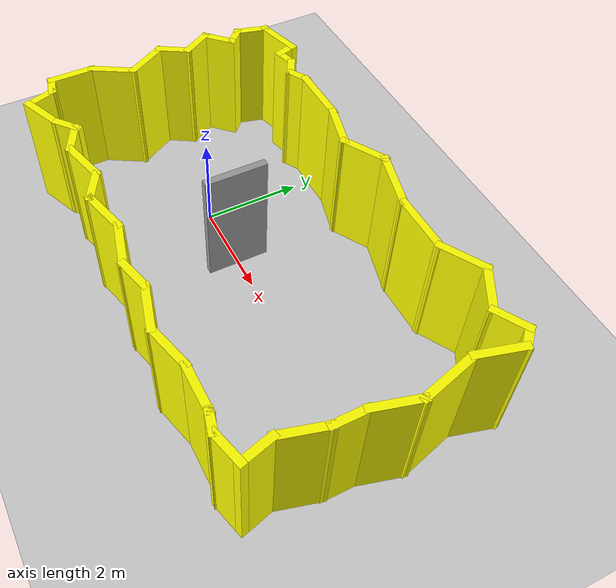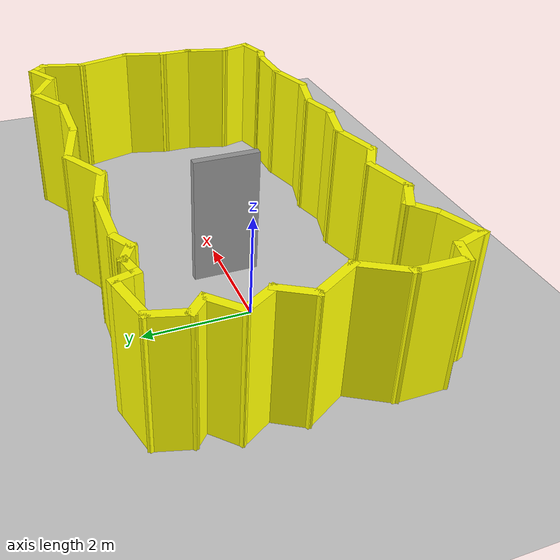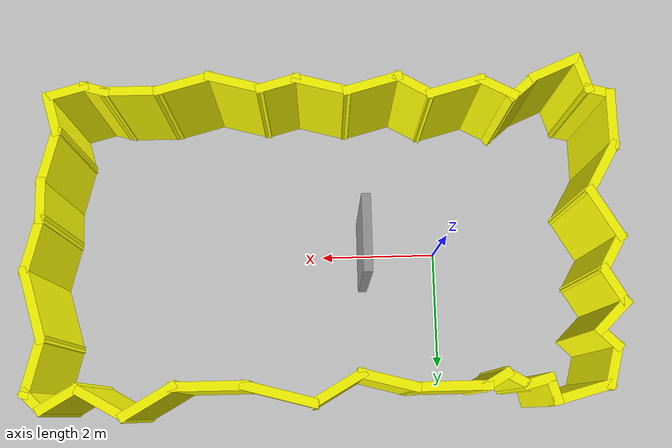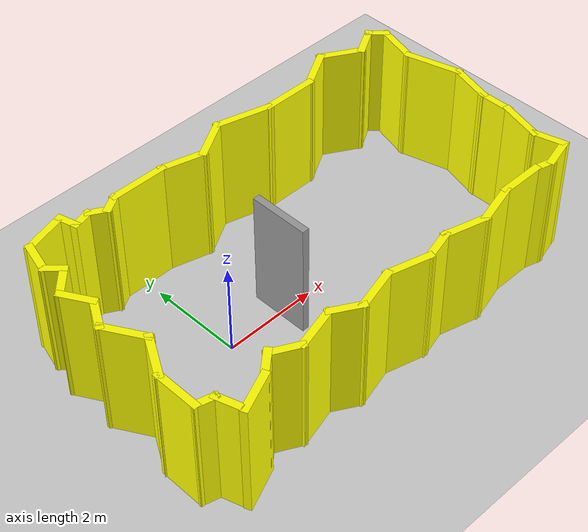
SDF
<sdf version="1.6">
 <world name="default">
  <light name="sun" type="directional">
   <pose>0 0 10 0 -0 0</pose>
   <diffuse>0.8 0.8 0.8 1</diffuse>
   <specular>0.2 0.2 0.2 1</specular>
   <attenuation>
    <range>1000</range>
    <constant>0.9</constant>
    <linear>0.01</linear>
    <quadratic>0.001</quadratic>
   </attenuation>
   <direction>-0.5 0.1 -0.9</direction>
  </light>
  <model name="ground_plane">
   <static>1</static>
   <link name="link">
    <collision name="collision">
     <geometry><plane><normal>0 0 1</normal><size>100 100</size></plane></geometry>
     <surface>
      <contact><collide_bitmask>65535</collide_bitmask></contact>
      <friction><ode><mu>100</mu><mu2>50</mu2></ode></friction>
     </surface>
    </collision>
    <visual name="visual">
     <cast_shadows>0</cast_shadows>
     <geometry><plane><normal>0 0 1</normal><size>100 100</size></plane></geometry>
     <material>
      <script><uri>file://media/materials/scripts/gazebo.material</uri><name>Gazebo/Grey</name></script>
     </material>
    </visual>
   </link>
  </model>
  <gravity>0 0 -9.8</gravity>
  <magnetic_field>6e-06 2.3e-05 -4.2e-05</magnetic_field>
  <atmosphere type="adiabatic"/>
  <physics name="default_physics" default="0" type="ode">
   <max_step_size>0.001</max_step_size>
   <real_time_factor>1</real_time_factor>
   <real_time_update_rate>1000</real_time_update_rate>
  </physics>
  <scene><ambient>0.4 0.4 0.4 1</ambient><background>0.7 0.7 0.7 1</background><shadows>1</shadows></scene>
  <audio><device>default</device></audio>
  <spherical_coordinates>
   <surface_model>EARTH_WGS84</surface_model>
   <latitude_deg>0</latitude_deg>
   <longitude_deg>0</longitude_deg>
   <elevation>0</elevation>
   <heading_deg>0</heading_deg>
  </spherical_coordinates>
  <model name="maze4">
   <pose>1.98225 -0.00866 0 0 -0 0</pose>
   <link name="Wall_10">
    <collision name="Wall_10_Collision">
     <geometry><box><size>1 0.15 2.5</size></box></geometry>
     <pose>0 0 1.25 0 -0 0</pose>
    </collision>
    <visual name="Wall_10_Visual">
     <pose>0 0 1.25 0 -0 0</pose>
     <geometry><box><size>1 0.15 2.5</size></box></geometry>
     <material>
      <script><uri>file://media/materials/scripts/gazebo.material</uri><name>Gazebo/Grey</name></script>
      <ambient>1 1 0 1</ambient>
     </material>
     <meta><layer>0</layer></meta>
    </visual>
    <pose>3.03563 -2.37458 0 0 -0 0</pose>
   </link>
   <link name="Wall_11">
    <collision name="Wall_11_Collision">
     <geometry><box><size>0.5 0.15 2.5</size></box></geometry>
     <pose>0 0 1.25 0 -0 0</pose>
    </collision>
    <visual name="Wall_11_Visual">
     <pose>0 0 1.25 0 -0 0</pose>
     <geometry><box><size>0.5 0.15 2.5</size></box></geometry>
     <material>
      <script><uri>file://media/materials/scripts/gazebo.material</uri><name>Gazebo/Grey</name></script>
      <ambient>1 1 0 1</ambient>
     </material>
     <meta><layer>0</layer></meta>
    </visual>
    <pose>3.62967 -2.41987 0 0 -0 -0.261799</pose>
   </link>
   <link name="Wall_12">
    <collision name="Wall_12_Collision">
     <geometry><box><size>0.75 0.15 2.5</size></box></geometry>
     <pose>0 0 1.25 0 -0 0</pose>
    </collision>
    <visual name="Wall_12_Visual">
     <pose>0 0 1.25 0 -0 0</pose>
     <geometry><box><size>0.75 0.15 2.5</size></box></geometry>
     <material>
      <script><uri>file://media/materials/scripts/gazebo.material</uri><name>Gazebo/Grey</name></script>
      <ambient>1 1 0 1</ambient>
     </material>
     <meta><layer>0</layer></meta>
    </visual>
    <pose>4.08848 -2.38752 0 0 -0 0.261799</pose>
   </link>
   <link name="Wall_13">
    <collision name="Wall_13_Collision">
     <geometry><box><size>0.75 0.15 2.5</size></box></geometry>
     <pose>0 0 1.25 0 -0 0</pose>
    </collision>
    <visual name="Wall_13_Visual">
     <pose>0 0 1.25 0 -0 0</pose>
     <geometry><box><size>0.75 0.15 2.5</size></box></geometry>
     <material>
      <script><uri>file://media/materials/scripts/gazebo.material</uri><name>Gazebo/Grey</name></script>
      <ambient>1 1 0 1</ambient>
     </material>
     <meta><layer>0</layer></meta>
    </visual>
    <pose>4.30061 -2.0201 0 0 -0 1.8326</pose>
   </link>
   <link name="Wall_14">
    <collision name="Wall_14_Collision">
     <geometry><box><size>1 0.15 2.5</size></box></geometry>
     <pose>0 0 1.25 0 -0 0</pose>
    </collision>
    <visual name="Wall_14_Visual">
     <pose>0 0 1.25 0 -0 0</pose>
     <geometry><box><size>1 0.15 2.5</size></box></geometry>
     <material>
      <script><uri>file://media/materials/scripts/gazebo.material</uri><name>Gazebo/Grey</name></script>
      <ambient>1 1 0 1</ambient>
     </material>
     <meta><layer>0</layer></meta>
    </visual>
    <pose>4.33297 -1.3198 0 0 -0 1.309</pose>
   </link>
   <link name="Wall_15">
    <collision name="Wall_15_Collision">
     <geometry><box><size>0.75 0.15 2.5</size></box></geometry>
     <pose>0 0 1.25 0 -0 0</pose>
    </collision>
    <visual name="Wall_15_Visual">
     <pose>0 0 1.25 0 -0 0</pose>
     <geometry><box><size>0.75 0.15 2.5</size></box></geometry>
     <material>
      <script><uri>file://media/materials/scripts/gazebo.material</uri><name>Gazebo/Grey</name></script>
      <ambient>1 1 0 1</ambient>
     </material>
     <meta><layer>0</layer></meta>
    </visual>
    <pose>4.44297 -0.609282 0 0 -0 1.5708</pose>
   </link>
   <link name="Wall_16">
    <collision name="Wall_16_Collision">
     <geometry><box><size>1 0.15 2.5</size></box></geometry>
     <pose>0 0 1.25 0 -0 0</pose>
    </collision>
    <visual name="Wall_16_Visual">
     <pose>0 0 1.25 0 -0 0</pose>
     <geometry><box><size>1 0.15 2.5</size></box></geometry>
     <material>
      <script><uri>file://media/materials/scripts/gazebo.material</uri><name>Gazebo/Grey</name></script>
      <ambient>1 1 0 1</ambient>
     </material>
     <meta><layer>0</layer></meta>
    </visual>
    <pose>4.55296 0.101236 0 0 -0 1.309</pose>
   </link>
   <link name="Wall_17">
    <collision name="Wall_17_Collision">
     <geometry><box><size>1.25 0.15 2.5</size></box></geometry>
     <pose>0 0 1.25 0 -0 0</pose>
    </collision>
    <visual name="Wall_17_Visual">
     <pose>0 0 1.25 0 -0 0</pose>
     <geometry><box><size>1.25 0.15 2.5</size></box></geometry>
     <material>
      <script><uri>file://media/materials/scripts/gazebo.material</uri><name>Gazebo/Grey</name></script>
      <ambient>1 1 0 1</ambient>
     </material>
     <meta><layer>0</layer></meta>
    </visual>
    <pose>4.52061 1.04301 0 0 -0 1.8326</pose>
   </link>
   <link name="Wall_18">
    <collision name="Wall_18_Collision">
     <geometry><box><size>1 0.15 2.5</size></box></geometry>
     <pose>0 0 1.25 0 -0 0</pose>
    </collision>
    <visual name="Wall_18_Visual">
     <pose>0 0 1.25 0 -0 0</pose>
     <geometry><box><size>1 0.15 2.5</size></box></geometry>
     <material>
      <script><uri>file://media/materials/scripts/gazebo.material</uri><name>Gazebo/Grey</name></script>
      <ambient>1 1 0 1</ambient>
     </material>
     <meta><layer>0</layer></meta>
    </visual>
    <pose>4.48826 1.98479 0 0 -0 1.309</pose>
   </link>
   <link name="Wall_19">
    <collision name="Wall_19_Collision">
     <geometry><box><size>0.5 0.15 2.5</size></box></geometry>
     <pose>0 0 1.25 0 -0 0</pose>
    </collision>
    <visual name="Wall_19_Visual">
     <pose>0 0 1.25 0 -0 0</pose>
     <geometry><box><size>0.5 0.15 2.5</size></box></geometry>
     <material>
      <script><uri>file://media/materials/scripts/gazebo.material</uri><name>Gazebo/Grey</name></script>
      <ambient>1 1 0 1</ambient>
     </material>
     <meta><layer>0</layer></meta>
    </visual>
    <pose>4.47451 2.51905 0 0 -0 2.35619</pose>
   </link>
   <link name="Wall_2">
    <collision name="Wall_2_Collision">
     <geometry><box><size>0.733012 0.15 2.5</size></box></geometry>
     <pose>0 0 1.25 0 -0 0</pose>
    </collision>
    <visual name="Wall_2_Visual">
     <pose>0 0 1.25 0 -0 0</pose>
     <geometry><box><size>0.733012 0.15 2.5</size></box></geometry>
     <material>
      <script><uri>file://media/materials/scripts/gazebo.material</uri><name>Gazebo/Grey</name></script>
      <ambient>1 1 0 1</ambient>
     </material>
     <meta><layer>0</layer></meta>
    </visual>
    <pose>-2.85174 -2.31421 0 0 -0 -0.484046</pose>
   </link>
   <link name="Wall_20">
    <collision name="Wall_20_Collision">
     <geometry><box><size>0.75 0.15 2.5</size></box></geometry>
     <pose>0 0 1.25 0 -0 0</pose>
    </collision>
    <visual name="Wall_20_Visual">
     <pose>0 0 1.25 0 -0 0</pose>
     <geometry><box><size>0.75 0.15 2.5</size></box></geometry>
     <material>
      <script><uri>file://media/materials/scripts/gazebo.material</uri><name>Gazebo/Grey</name></script>
      <ambient>1 1 0 1</ambient>
     </material>
     <meta><layer>0</layer></meta>
    </visual>
    <pose>4.09096 2.4928 0 0 -0 -2.61799</pose>
   </link>
   <link name="Wall_21">
    <collision name="Wall_21_Collision">
     <geometry><box><size>1 0.15 2.5</size></box></geometry>
     <pose>0 0 1.25 0 -0 0</pose>
    </collision>
    <visual name="Wall_21_Visual">
     <pose>0 0 1.25 0 -0 0</pose>
     <geometry><box><size>1 0.15 2.5</size></box></geometry>
     <material>
      <script><uri>file://media/materials/scripts/gazebo.material</uri><name>Gazebo/Grey</name></script>
      <ambient>1 1 0 1</ambient>
     </material>
     <meta><layer>0</layer></meta>
    </visual>
    <pose>3.46309 2.5553 0 0 -0 2.61799</pose>
   </link>
   <link name="Wall_22">
    <collision name="Wall_22_Collision">
     <geometry><box><size>1 0.15 2.5</size></box></geometry>
     <pose>0 0 1.25 0 -0 0</pose>
    </collision>
    <visual name="Wall_22_Visual">
     <pose>0 0 1.25 0 -0 0</pose>
     <geometry><box><size>1 0.15 2.5</size></box></geometry>
     <material>
      <script><uri>file://media/materials/scripts/gazebo.material</uri><name>Gazebo/Grey</name></script>
      <ambient>1 1 0 1</ambient>
     </material>
     <meta><layer>0</layer></meta>
    </visual>
    <pose>2.72697 2.5553 0 0 -0 -2.61799</pose>
   </link>
   <link name="Wall_23">
    <collision name="Wall_23_Collision">
     <geometry><box><size>1.25 0.15 2.5</size></box></geometry>
     <pose>0 0 1.25 0 -0 0</pose>
    </collision>
    <visual name="Wall_23_Visual">
     <pose>0 0 1.25 0 -0 0</pose>
     <geometry><box><size>1.25 0.15 2.5</size></box></geometry>
     <material>
      <script><uri>file://media/materials/scripts/gazebo.material</uri><name>Gazebo/Grey</name></script>
      <ambient>1 1 0 1</ambient>
     </material>
     <meta><layer>0</layer></meta>
    </visual>
    <pose>1.80891 2.3428 0 0 -0 3.14159</pose>
   </link>
   <link name="Wall_24">
    <collision name="Wall_24_Collision">
     <geometry><box><size>1.25 0.15 2.5</size></box></geometry>
     <pose>0 0 1.25 0 -0 0</pose>
    </collision>
    <visual name="Wall_24_Visual">
     <pose>0 0 1.25 0 -0 0</pose>
     <geometry><box><size>1.25 0.15 2.5</size></box></geometry>
     <material>
      <script><uri>file://media/materials/scripts/gazebo.material</uri><name>Gazebo/Grey</name></script>
      <ambient>1 1 0 1</ambient>
     </material>
     <meta><layer>0</layer></meta>
    </visual>
    <pose>0.727651 2.48515 0 0 -0 2.87979</pose>
   </link>
   <link name="Wall_25">
    <collision name="Wall_25_Collision">
     <geometry><box><size>1 0.15 2.5</size></box></geometry>
     <pose>0 0 1.25 0 -0 0</pose>
    </collision>
    <visual name="Wall_25_Visual">
     <pose>0 0 1.25 0 -0 0</pose>
     <geometry><box><size>1 0.15 2.5</size></box></geometry>
     <material>
      <script><uri>file://media/materials/scripts/gazebo.material</uri><name>Gazebo/Grey</name></script>
      <ambient>1 1 0 1</ambient>
     </material>
     <meta><layer>0</layer></meta>
    </visual>
    <pose>-0.171669 2.415 0 0 -0 -2.61799</pose>
   </link>
   <link name="Wall_26">
    <collision name="Wall_26_Collision">
     <geometry><box><size>1 0.15 2.5</size></box></geometry>
     <pose>0 0 1.25 0 -0 0</pose>
    </collision>
    <visual name="Wall_26_Visual">
     <pose>0 0 1.25 0 -0 0</pose>
     <geometry><box><size>1 0.15 2.5</size></box></geometry>
     <material>
      <script><uri>file://media/materials/scripts/gazebo.material</uri><name>Gazebo/Grey</name></script>
      <ambient>1 1 0 1</ambient>
     </material>
     <meta><layer>0</layer></meta>
    </visual>
    <pose>-0.950248 2.3125 0 0 -0 2.87979</pose>
   </link>
   <link name="Wall_27">
    <collision name="Wall_27_Collision">
     <geometry><box><size>1.25 0.15 2.5</size></box></geometry>
     <pose>0 0 1.25 0 -0 0</pose>
    </collision>
    <visual name="Wall_27_Visual">
     <pose>0 0 1.25 0 -0 0</pose>
     <geometry><box><size>1.25 0.15 2.5</size></box></geometry>
     <material>
      <script><uri>file://media/materials/scripts/gazebo.material</uri><name>Gazebo/Grey</name></script>
      <ambient>1 1 0 1</ambient>
     </material>
     <meta><layer>0</layer></meta>
    </visual>
    <pose>-1.91077 2.4225 0 0 -0 3.14159</pose>
   </link>
   <link name="Wall_28">
    <collision name="Wall_28_Collision">
     <geometry><box><size>0.5 0.15 2.5</size></box></geometry>
     <pose>0 0 1.25 0 -0 0</pose>
    </collision>
    <visual name="Wall_28_Visual">
     <pose>0 0 1.25 0 -0 0</pose>
     <geometry><box><size>0.5 0.15 2.5</size></box></geometry>
     <material>
      <script><uri>file://media/materials/scripts/gazebo.material</uri><name>Gazebo/Grey</name></script>
      <ambient>1 1 0 1</ambient>
     </material>
     <meta><layer>0</layer></meta>
    </visual>
    <pose>-2.61232 2.33499 0 0 -0 -2.61799</pose>
   </link>
   <link name="Wall_29">
    <collision name="Wall_29_Collision">
     <geometry><box><size>0.5 0.15 2.5</size></box></geometry>
     <pose>0 0 1.25 0 -0 0</pose>
    </collision>
    <visual name="Wall_29_Visual">
     <pose>0 0 1.25 0 -0 0</pose>
     <geometry><box><size>0.5 0.15 2.5</size></box></geometry>
     <material>
      <script><uri>file://media/materials/scripts/gazebo.material</uri><name>Gazebo/Grey</name></script>
      <ambient>1 1 0 1</ambient>
     </material>
     <meta><layer>0</layer></meta>
    </visual>
    <pose>-2.91543 2.33499 0 0 -0 2.61799</pose>
   </link>
   <link name="Wall_3">
    <collision name="Wall_3_Collision">
     <geometry><box><size>1 0.15 2.5</size></box></geometry>
     <pose>0 0 1.25 0 -0 0</pose>
    </collision>
    <visual name="Wall_3_Visual">
     <pose>0 0 1.25 0 -0 0</pose>
     <geometry><box><size>1 0.15 2.5</size></box></geometry>
     <material>
      <script><uri>file://media/materials/scripts/gazebo.material</uri><name>Gazebo/Grey</name></script>
      <ambient>1 1 0 1</ambient>
     </material>
     <meta><layer>0</layer></meta>
    </visual>
    <pose>-2.18321 -2.33987 0 0 -0 0.261799</pose>
   </link>
   <link name="Wall_30">
    <collision name="Wall_30_Collision">
     <geometry><box><size>0.5 0.15 2.5</size></box></geometry>
     <pose>0 0 1.25 0 -0 0</pose>
    </collision>
    <visual name="Wall_30_Visual">
     <pose>0 0 1.25 0 -0 0</pose>
     <geometry><box><size>0.5 0.15 2.5</size></box></geometry>
     <material>
      <script><uri>file://media/materials/scripts/gazebo.material</uri><name>Gazebo/Grey</name></script>
      <ambient>1 1 0 1</ambient>
     </material>
     <meta><layer>0</layer></meta>
    </visual>
    <pose>-3.23602 2.3772 0 0 -0 -2.87979</pose>
   </link>
   <link name="Wall_31">
    <collision name="Wall_31_Collision">
     <geometry><box><size>0.5 0.15 2.5</size></box></geometry>
     <pose>0 0 1.25 0 -0 0</pose>
    </collision>
    <visual name="Wall_31_Visual">
     <pose>0 0 1.25 0 -0 0</pose>
     <geometry><box><size>0.5 0.15 2.5</size></box></geometry>
     <material>
      <script><uri>file://media/materials/scripts/gazebo.material</uri><name>Gazebo/Grey</name></script>
      <ambient>1 1 0 1</ambient>
     </material>
     <meta><layer>0</layer></meta>
    </visual>
    <pose>-3.45035 2.50095 0 0 -0 1.8326</pose>
   </link>
   <link name="Wall_32">
    <collision name="Wall_32_Collision">
     <geometry><box><size>1 0.15 2.5</size></box></geometry>
     <pose>0 0 1.25 0 -0 0</pose>
    </collision>
    <visual name="Wall_32_Visual">
     <pose>0 0 1.25 0 -0 0</pose>
     <geometry><box><size>1 0.15 2.5</size></box></geometry>
     <material>
      <script><uri>file://media/materials/scripts/gazebo.material</uri><name>Gazebo/Grey</name></script>
      <ambient>1 1 0 1</ambient>
     </material>
     <meta><layer>0</layer></meta>
    </visual>
    <pose>-3.90616 2.55998 0 0 -0 -2.87979</pose>
   </link>
   <link name="Wall_33">
    <collision name="Wall_33_Collision">
     <geometry><box><size>0.75 0.15 2.5</size></box></geometry>
     <pose>0 0 1.25 0 -0 0</pose>
    </collision>
    <visual name="Wall_33_Visual">
     <pose>0 0 1.25 0 -0 0</pose>
     <geometry><box><size>0.75 0.15 2.5</size></box></geometry>
     <material>
      <script><uri>file://media/materials/scripts/gazebo.material</uri><name>Gazebo/Grey</name></script>
      <ambient>1 1 0 1</ambient>
     </material>
     <meta><layer>0</layer></meta>
    </visual>
    <pose>-4.39433 2.16021 0 0 -0 -1.8326</pose>
   </link>
   <link name="Wall_34">
    <collision name="Wall_34_Collision">
     <geometry><box><size>0.5 0.15 2.5</size></box></geometry>
     <pose>0 0 1.25 0 -0 0</pose>
    </collision>
    <visual name="Wall_34_Visual">
     <pose>0 0 1.25 0 -0 0</pose>
     <geometry><box><size>0.5 0.15 2.5</size></box></geometry>
     <material>
      <script><uri>file://media/materials/scripts/gazebo.material</uri><name>Gazebo/Grey</name></script>
      <ambient>1 1 0 1</ambient>
     </material>
     <meta><layer>0</layer></meta>
    </visual>
    <pose>-4.34823 1.74669 0 0 -0 -0.785398</pose>
   </link>
   <link name="Wall_35">
    <collision name="Wall_35_Collision">
     <geometry><box><size>0.75 0.15 2.5</size></box></geometry>
     <pose>0 0 1.25 0 -0 0</pose>
    </collision>
    <visual name="Wall_35_Visual">
     <pose>0 0 1.25 0 -0 0</pose>
     <geometry><box><size>0.75 0.15 2.5</size></box></geometry>
     <material>
      <script><uri>file://media/materials/scripts/gazebo.material</uri><name>Gazebo/Grey</name></script>
      <ambient>1 1 0 1</ambient>
     </material>
     <meta><layer>0</layer></meta>
    </visual>
    <pose>-4.43662 1.41081 0 0 -0 -2.35619</pose>
   </link>
   <link name="Wall_36">
    <collision name="Wall_36_Collision">
     <geometry><box><size>0.75 0.15 2.5</size></box></geometry>
     <pose>0 0 1.25 0 -0 0</pose>
    </collision>
    <visual name="Wall_36_Visual">
     <pose>0 0 1.25 0 -0 0</pose>
     <geometry><box><size>0.75 0.15 2.5</size></box></geometry>
     <material>
      <script><uri>file://media/materials/scripts/gazebo.material</uri><name>Gazebo/Grey</name></script>
      <ambient>1 1 0 1</ambient>
     </material>
     <meta><layer>0</layer></meta>
    </visual>
    <pose>-4.49875 0.938871 0 0 -0 -1.0472</pose>
   </link>
   <link name="Wall_37">
    <collision name="Wall_37_Collision">
     <geometry><box><size>0.75 0.15 2.5</size></box></geometry>
     <pose>0 0 1.25 0 -0 0</pose>
    </collision>
    <visual name="Wall_37_Visual">
     <pose>0 0 1.25 0 -0 0</pose>
     <geometry><box><size>0.75 0.15 2.5</size></box></geometry>
     <material>
      <script><uri>file://media/materials/scripts/gazebo.material</uri><name>Gazebo/Grey</name></script>
      <ambient>1 1 0 1</ambient>
     </material>
     <meta><layer>0</layer></meta>
    </visual>
    <pose>-4.49875 0.419256 0 0 -0 -2.0944</pose>
   </link>
   <link name="Wall_38">
    <collision name="Wall_38_Collision">
     <geometry><box><size>1 0.15 2.5</size></box></geometry>
     <pose>0 0 1.25 0 -0 0</pose>
    </collision>
    <visual name="Wall_38_Visual">
     <pose>0 0 1.25 0 -0 0</pose>
     <geometry><box><size>1 0.15 2.5</size></box></geometry>
     <material>
      <script><uri>file://media/materials/scripts/gazebo.material</uri><name>Gazebo/Grey</name></script>
      <ambient>1 1 0 1</ambient>
     </material>
     <meta><layer>0</layer></meta>
    </visual>
    <pose>-4.43625 -0.208613 0 0 -0 -1.0472</pose>
   </link>
   <link name="Wall_39">
    <collision name="Wall_39_Collision">
     <geometry><box><size>1 0.15 2.5</size></box></geometry>
     <pose>0 0 1.25 0 -0 0</pose>
    </collision>
    <visual name="Wall_39_Visual">
     <pose>0 0 1.25 0 -0 0</pose>
     <geometry><box><size>1 0.15 2.5</size></box></geometry>
     <material>
      <script><uri>file://media/materials/scripts/gazebo.material</uri><name>Gazebo/Grey</name></script>
      <ambient>1 1 0 1</ambient>
     </material>
     <meta><layer>0</layer></meta>
    </visual>
    <pose>-4.43625 -0.944734 0 0 -0 -2.0944</pose>
   </link>
   <link name="Wall_4">
    <collision name="Wall_4_Collision">
     <geometry><box><size>0.75 0.15 2.5</size></box></geometry>
     <pose>0 0 1.25 0 -0 0</pose>
    </collision>
    <visual name="Wall_4_Visual">
     <pose>0 0 1.25 0 -0 0</pose>
     <geometry><box><size>0.75 0.15 2.5</size></box></geometry>
     <material>
      <script><uri>file://media/materials/scripts/gazebo.material</uri><name>Gazebo/Grey</name></script>
      <ambient>1 1 0 1</ambient>
     </material>
     <meta><layer>0</layer></meta>
    </visual>
    <pose>-1.51288 -2.37987 0 0 -0 -0.523599</pose>
   </link>
   <link name="Wall_40">
    <collision name="Wall_40_Collision">
     <geometry><box><size>1 0.15 2.5</size></box></geometry>
     <pose>0 0 1.25 0 -0 0</pose>
    </collision>
    <visual name="Wall_40_Visual">
     <pose>0 0 1.25 0 -0 0</pose>
     <geometry><box><size>1 0.15 2.5</size></box></geometry>
     <material>
      <script><uri>file://media/materials/scripts/gazebo.material</uri><name>Gazebo/Grey</name></script>
      <ambient>1 1 0 1</ambient>
     </material>
     <meta><layer>0</layer></meta>
    </visual>
    <pose>-4.64875 -1.73779 0 0 -0 -1.5708</pose>
   </link>
   <link name="Wall_41">
    <collision name="Wall_41_Collision">
     <geometry><box><size>0.5 0.15 2.5</size></box></geometry>
     <pose>0 0 1.25 0 -0 0</pose>
    </collision>
    <visual name="Wall_41_Visual">
     <pose>0 0 1.25 0 -0 0</pose>
     <geometry><box><size>0.5 0.15 2.5</size></box></geometry>
     <material>
      <script><uri>file://media/materials/scripts/gazebo.material</uri><name>Gazebo/Grey</name></script>
      <ambient>1 1 0 1</ambient>
     </material>
     <meta><layer>0</layer></meta>
    </visual>
    <pose>-4.47971 -2.20809 0 0 -0 -0.261799</pose>
   </link>
   <link name="Wall_42">
    <collision name="Wall_42_Collision">
     <geometry><box><size>0.661908 0.15 2.5</size></box></geometry>
     <pose>0 0 1.25 0 -0 0</pose>
    </collision>
    <visual name="Wall_42_Visual">
     <pose>0 0 1.25 0 -0 0</pose>
     <geometry><box><size>0.661908 0.15 2.5</size></box></geometry>
     <material>
      <script><uri>file://media/materials/scripts/gazebo.material</uri><name>Gazebo/Grey</name></script>
      <ambient>1 1 0 1</ambient>
     </material>
     <meta><layer>0</layer></meta>
    </visual>
    <pose>-4.23303 -2.49727 0 0 -0 -1.26258</pose>
   </link>
   <link name="Wall_43">
    <collision name="Wall_43_Collision">
     <geometry><box><size>0.917701 0.15 2.5</size></box></geometry>
     <pose>0 0 1.25 0 -0 0</pose>
    </collision>
    <visual name="Wall_43_Visual">
     <pose>0 0 1.25 0 -0 0</pose>
     <geometry><box><size>0.917701 0.15 2.5</size></box></geometry>
     <material>
      <script><uri>file://media/materials/scripts/gazebo.material</uri><name>Gazebo/Grey</name></script>
      <ambient>1 1 0 1</ambient>
     </material>
     <meta><layer>0</layer></meta>
    </visual>
    <pose>-3.80262 -2.62044 0 0 -0 0.405213</pose>
   </link>
   <link name="Wall_44">
    <collision name="Wall_44_Collision">
     <geometry><box><size>0.597315 0.15 2.5</size></box></geometry>
     <pose>0 0 1.25 0 -0 0</pose>
    </collision>
    <visual name="Wall_44_Visual">
     <pose>0 0 1.25 0 -0 0</pose>
     <geometry><box><size>0.597315 0.15 2.5</size></box></geometry>
     <material>
      <script><uri>file://media/materials/scripts/gazebo.material</uri><name>Gazebo/Grey</name></script>
      <ambient>1 1 0 1</ambient>
     </material>
     <meta><layer>0</layer></meta>
    </visual>
    <pose>-3.24922 -2.29325 0 0 -0 0.707022</pose>
   </link>
   <link name="Wall_5">
    <collision name="Wall_5_Collision">
     <geometry><box><size>1 0.15 2.5</size></box></geometry>
     <pose>0 0 1.25 0 -0 0</pose>
    </collision>
    <visual name="Wall_5_Visual">
     <pose>0 0 1.25 0 -0 0</pose>
     <geometry><box><size>1 0.15 2.5</size></box></geometry>
     <material>
      <script><uri>file://media/materials/scripts/gazebo.material</uri><name>Gazebo/Grey</name></script>
      <ambient>1 1 0 1</ambient>
     </material>
     <meta><layer>0</layer></meta>
    </visual>
    <pose>-0.842555 -2.41987 0 0 -0 0.261799</pose>
   </link>
   <link name="Wall_6">
    <collision name="Wall_6_Collision">
     <geometry><box><size>1 0.15 2.5</size></box></geometry>
     <pose>0 0 1.25 0 -0 0</pose>
    </collision>
    <visual name="Wall_6_Visual">
     <pose>0 0 1.25 0 -0 0</pose>
     <geometry><box><size>1 0.15 2.5</size></box></geometry>
     <material>
      <script><uri>file://media/materials/scripts/gazebo.material</uri><name>Gazebo/Grey</name></script>
      <ambient>1 1 0 1</ambient>
     </material>
     <meta><layer>0</layer></meta>
    </visual>
    <pose>-0.021518 -2.41987 0 0 -0 -0.261799</pose>
   </link>
   <link name="Wall_7">
    <collision name="Wall_7_Collision">
     <geometry><box><size>0.75 0.15 2.5</size></box></geometry>
     <pose>0 0 1.25 0 -0 0</pose>
    </collision>
    <visual name="Wall_7_Visual">
     <pose>0 0 1.25 0 -0 0</pose>
     <geometry><box><size>0.75 0.15 2.5</size></box></geometry>
     <material>
      <script><uri>file://media/materials/scripts/gazebo.material</uri><name>Gazebo/Grey</name></script>
      <ambient>1 1 0 1</ambient>
     </material>
     <meta><layer>0</layer></meta>
    </visual>
    <pose>0.678779 -2.45222 0 0 -0 0.261799</pose>
   </link>
   <link name="Wall_8">
    <collision name="Wall_8_Collision">
     <geometry><box><size>1 0.15 2.5</size></box></geometry>
     <pose>0 0 1.25 0 -0 0</pose>
    </collision>
    <visual name="Wall_8_Visual">
     <pose>0 0 1.25 0 -0 0</pose>
     <geometry><box><size>1 0.15 2.5</size></box></geometry>
     <material>
      <script><uri>file://media/materials/scripts/gazebo.material</uri><name>Gazebo/Grey</name></script>
      <ambient>1 1 0 1</ambient>
     </material>
     <meta><layer>0</layer></meta>
    </visual>
    <pose>1.37908 -2.48458 0 0 -0 -0.261799</pose>
   </link>
   <link name="Wall_9">
    <collision name="Wall_9_Collision">
     <geometry><box><size>1 0.15 2.5</size></box></geometry>
     <pose>0 0 1.25 0 -0 0</pose>
    </collision>
    <visual name="Wall_9_Visual">
     <pose>0 0 1.25 0 -0 0</pose>
     <geometry><box><size>1 0.15 2.5</size></box></geometry>
     <material>
      <script><uri>file://media/materials/scripts/gazebo.material</uri><name>Gazebo/Grey</name></script>
      <ambient>1 1 0 1</ambient>
     </material>
     <meta><layer>0</layer></meta>
    </visual>
    <pose>2.20011 -2.48458 0 0 -0 0.261799</pose>
   </link>
   <static>1</static>
  </model>
  <model name="Untitled">
   <pose>1.3 0.007372 0 0 -0 0</pose>
   <link name="Wall_1">
    <collision name="Wall_1_Collision">
     <geometry><box><size>1.25 0.15 2.5</size></box></geometry>
     <pose>0 0 1.25 0 -0 0</pose>
    </collision>
    <visual name="Wall_1_Visual">
     <pose>0 0 1.25 0 -0 0</pose>
     <geometry><box><size>1.25 0.15 2.5</size></box></geometry>
     <material>
      <script><uri>file://media/materials/scripts/gazebo.material</uri><name>Gazebo/Grey</name></script>
      <ambient>1 1 1 1</ambient>
     </material>
     <meta><layer>0</layer></meta>
    </visual>
    <pose>0 -0 0 0 -0 1.5708</pose>
   </link>
   <static>1</static>
  </model>
 </world>
</sdf>
